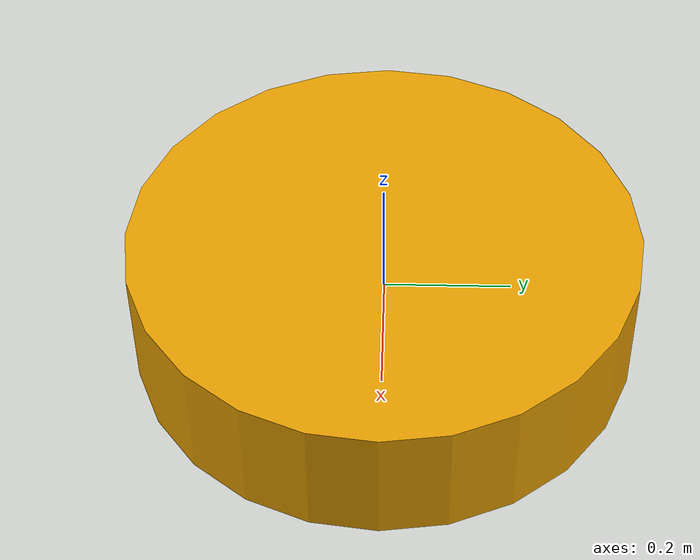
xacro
<?xml version="1.0"?>
<robot xmlns:xacro="http://www.ros.org/wiki/xacro">

  <!-- base property -->

  <xacro:property name="base_height" value="0.21" />
  <xacro:property name="base_mass" value="5" />
  <xacro:property name="base_rad" value="0.4" />
  <xacro:property name="base_length" value="0.21" />

  <!-- base property -->

  <!-- inertial macros -->

   <xacro:macro name="solid_cylinder_inertial"
               params="r h mass *origin">
    <inertial>
      <xacro:insert_block name="origin"/>
      <mass value="${mass}"/>
      <inertia ixx="${(mass * h * h)/12 + (mass * r * r)/4}" ixy="0.0" ixz="0.0"
               iyy="${(mass * h * h)/12 + (mass * r * r)/4}" iyz="0.0"
               izz="${mass / 2 * r * r}" />
    </inertial>
  </xacro:macro>

  <!-- inertial macros -->

    <link name="base_link">
      <collision name="collision_chassis">
        <origin rpy="0 0 0" xyz="0 0 0"/>
        <geometry>
          <cylinder length="${base_length}" radius="${base_rad}"/>
        </geometry>
      </collision>
      <visual>
        <origin rpy="0 0 0" xyz="0 0 0"/>
        <geometry>
          <cylinder length="${base_length}" radius="${base_rad}"/>
        </geometry>
      </visual>
      <xacro:solid_cylinder_inertial
            r="${base_rad}" h="${base_length}"
            mass="${base_mass}">
        <origin xyz="0 0 0" rpy="0 0 0" />
      </xacro:solid_cylinder_inertial>
    </link>

</robot>
